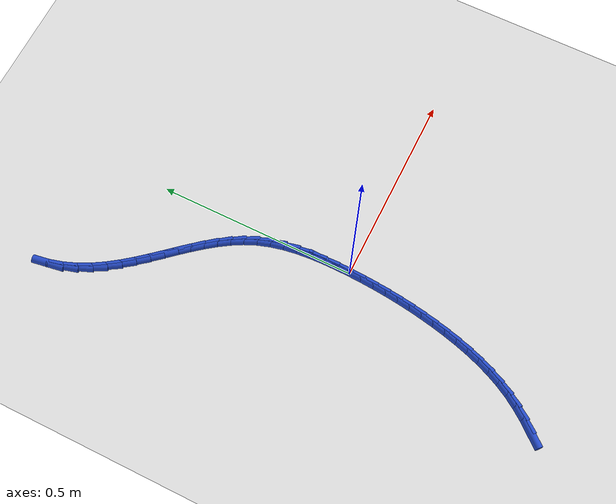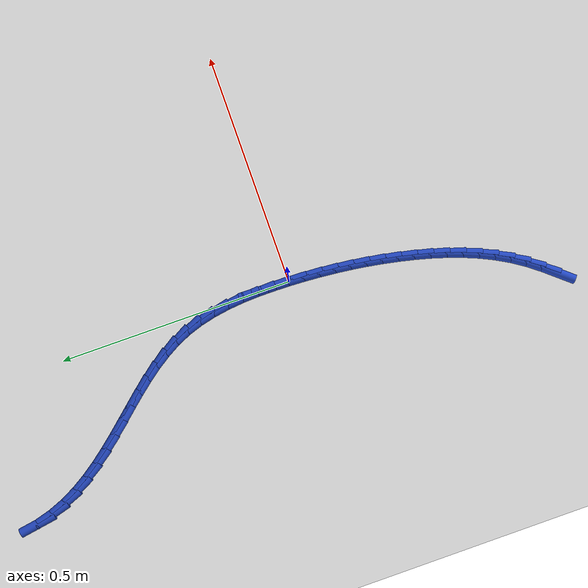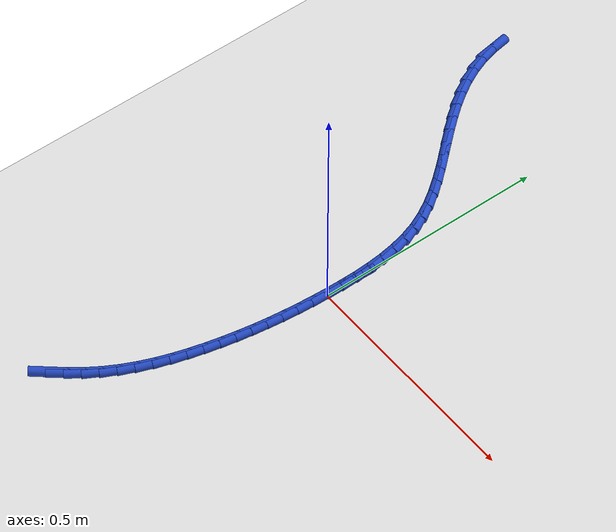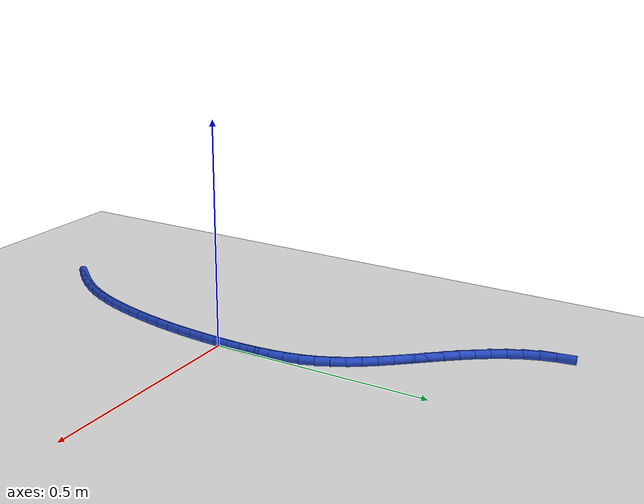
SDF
<sdf version="1.6">
 <world name="default">
  <model name="ground_plane">
   <static>1</static>
   <link name="link">
    <collision name="collision">
     <geometry><plane><normal>0 0 1</normal><size>100 100</size></plane></geometry>
     <surface><friction><ode><mu>100</mu><mu2>50</mu2></ode></friction></surface>
    </collision>
    <visual name="visual">
     <cast_shadows>0</cast_shadows>
     <geometry><plane><normal>0 0 1</normal><size>100 100</size></plane></geometry>
     <material>
      <script><uri>file://media/materials/scripts/gazebo.material</uri><name>Gazebo/WhiteGlow</name></script>
     </material>
    </visual>
   </link>
  </model>
  <model name="line">
   <link name="link_0">
    <pose>-2.3960868011929648e-17 1.3877787807814457e-17 0.01 0 1.57 1.545897107826998</pose>
    <collision name="collision">
     <geometry><cylinder><radius>0.01</radius><length>0.08</length></cylinder></geometry>
    </collision>
    <visual name="visual">
     <material>
      <script><name>Gazebo/Blue</name><uri>file://media/materials/scripts/gazebo.material</uri></script>
     </material>
     <geometry><cylinder><radius>0.01</radius><length>0.08</length></cylinder></geometry>
    </visual>
   </link>
   <link name="link_1">
    <pose>0.0008592763216469214 0.03450303963018791 0.01 0 1.57 -1.5659385153599021</pose>
    <collision name="collision">
     <geometry><cylinder><radius>0.01</radius><length>0.08</length></cylinder></geometry>
    </collision>
    <visual name="visual">
     <material>
      <script><name>Gazebo/Blue</name><uri>file://media/materials/scripts/gazebo.material</uri></script>
     </material>
     <geometry><cylinder><radius>0.01</radius><length>0.08</length></cylinder></geometry>
    </visual>
   </link>
   <link name="link_2">
    <pose>0.0006910396736926901 0.06913495707600271 0.01 0 1.57 -1.5264834480917824</pose>
    <collision name="collision">
     <geometry><cylinder><radius>0.01</radius><length>0.08</length></cylinder></geometry>
    </collision>
    <visual name="visual">
     <material>
      <script><name>Gazebo/Blue</name><uri>file://media/materials/scripts/gazebo.material</uri></script>
     </material>
     <geometry><cylinder><radius>0.01</radius><length>0.08</length></cylinder></geometry>
    </visual>
   </link>
   <link name="link_3">
    <pose>-0.0008382564287101673 0.1036236886790465 0.01 0 1.57 -1.4764610011493455</pose>
    <collision name="collision">
     <geometry><cylinder><radius>0.01</radius><length>0.08</length></cylinder></geometry>
    </collision>
    <visual name="visual">
     <material>
      <script><name>Gazebo/Blue</name><uri>file://media/materials/scripts/gazebo.material</uri></script>
     </material>
     <geometry><cylinder><radius>0.01</radius><length>0.08</length></cylinder></geometry>
    </visual>
   </link>
   <link name="link_4">
    <pose>-0.0040621584704091055 0.13769717078092136 0.01 0 1.57 -1.4147627865338976</pose>
    <collision name="collision">
     <geometry><cylinder><radius>0.01</radius><length>0.08</length></cylinder></geometry>
    </collision>
    <visual name="visual">
     <material>
      <script><name>Gazebo/Blue</name><uri>file://media/materials/scripts/gazebo.material</uri></script>
     </material>
     <geometry><cylinder><radius>0.01</radius><length>0.08</length></cylinder></geometry>
    </visual>
   </link>
   <link name="link_5">
    <pose>-0.009314212936251573 0.1710833397232294 0.01 0 1.57 -1.3401755859879203</pose>
    <collision name="collision">
     <geometry><cylinder><radius>0.01</radius><length>0.08</length></cylinder></geometry>
    </collision>
    <visual name="visual">
     <material>
      <script><name>Gazebo/Blue</name><uri>file://media/materials/scripts/gazebo.material</uri></script>
     </material>
     <geometry><cylinder><radius>0.01</radius><length>0.08</length></cylinder></geometry>
    </visual>
   </link>
   <link name="link_6">
    <pose>-0.016927966311085025 0.2035101318475726 0.01 0 1.57 -1.251628712929015</pose>
    <collision name="collision">
     <geometry><cylinder><radius>0.01</radius><length>0.08</length></cylinder></geometry>
    </collision>
    <visual name="visual">
     <material>
      <script><name>Gazebo/Blue</name><uri>file://media/materials/scripts/gazebo.material</uri></script>
     </material>
     <geometry><cylinder><radius>0.01</radius><length>0.08</length></cylinder></geometry>
    </visual>
   </link>
   <link name="link_7">
    <pose>-0.027236965079756904 0.23470548349555323 0.01 0 1.57 -1.1515240778708402</pose>
    <collision name="collision">
     <geometry><cylinder><radius>0.01</radius><length>0.08</length></cylinder></geometry>
    </collision>
    <visual name="visual">
     <material>
      <script><name>Gazebo/Blue</name><uri>file://media/materials/scripts/gazebo.material</uri></script>
     </material>
     <geometry><cylinder><radius>0.01</radius><length>0.08</length></cylinder></geometry>
    </visual>
   </link>
   <link name="link_8">
    <pose>-0.040494596979720736 0.26445112748032834 0.01 0 1.57 -1.059333888668543</pose>
    <collision name="collision">
     <geometry><cylinder><radius>0.01</radius><length>0.08</length></cylinder></geometry>
    </collision>
    <visual name="visual">
     <material>
      <script><name>Gazebo/Blue</name><uri>file://media/materials/scripts/gazebo.material</uri></script>
     </material>
     <geometry><cylinder><radius>0.01</radius><length>0.08</length></cylinder></geometry>
    </visual>
   </link>
   <link name="link_9">
    <pose>-0.056445630595688676 0.29287014321380417 0.01 0 1.57 -0.9838645484405297</pose>
    <collision name="collision">
     <geometry><cylinder><radius>0.01</radius><length>0.08</length></cylinder></geometry>
    </collision>
    <visual name="visual">
     <material>
      <script><name>Gazebo/Blue</name><uri>file://media/materials/scripts/gazebo.material</uri></script>
     </material>
     <geometry><cylinder><radius>0.01</radius><length>0.08</length></cylinder></geometry>
    </visual>
   </link>
   <link name="link_10">
    <pose>-0.07463597597987633 0.32021906887233503 0.01 0 1.57 -0.9255285605055884</pose>
    <collision name="collision">
     <geometry><cylinder><radius>0.01</radius><length>0.08</length></cylinder></geometry>
    </collision>
    <visual name="visual">
     <material>
      <script><name>Gazebo/Blue</name><uri>file://media/materials/scripts/gazebo.material</uri></script>
     </material>
     <geometry><cylinder><radius>0.01</radius><length>0.08</length></cylinder></geometry>
    </visual>
   </link>
   <link name="link_11">
    <pose>-0.09461108389730388 0.3467547508710066 0.01 0 1.57 -0.8839255645810842</pose>
    <collision name="collision">
     <geometry><cylinder><radius>0.01</radius><length>0.08</length></cylinder></geometry>
    </collision>
    <visual name="visual">
     <material>
      <script><name>Gazebo/Blue</name><uri>file://media/materials/scripts/gazebo.material</uri></script>
     </material>
     <geometry><cylinder><radius>0.01</radius><length>0.08</length></cylinder></geometry>
    </visual>
   </link>
   <link name="link_12">
    <pose>-0.11591640511299148 0.37273403562490415 0.01 0 1.57 -0.858371076571808</pose>
    <collision name="collision">
     <geometry><cylinder><radius>0.01</radius><length>0.08</length></cylinder></geometry>
    </collision>
    <visual name="visual">
     <material>
      <script><name>Gazebo/Blue</name><uri>file://media/materials/scripts/gazebo.material</uri></script>
     </material>
     <geometry><cylinder><radius>0.01</radius><length>0.08</length></cylinder></geometry>
    </visual>
   </link>
   <link name="link_13">
    <pose>-0.13809739039195926 0.398413769549113 0.01 0 1.57 -0.8482296161784035</pose>
    <collision name="collision">
     <geometry><cylinder><radius>0.01</radius><length>0.08</length></cylinder></geometry>
    </collision>
    <visual name="visual">
     <material>
      <script><name>Gazebo/Blue</name><uri>file://media/materials/scripts/gazebo.material</uri></script>
     </material>
     <geometry><cylinder><radius>0.01</radius><length>0.08</length></cylinder></geometry>
    </visual>
   </link>
   <link name="link_14">
    <pose>-0.16069949049922738 0.4240507990587185 0.01 0 1.57 -0.8530871768644122</pose>
    <collision name="collision">
     <geometry><cylinder><radius>0.01</radius><length>0.08</length></cylinder></geometry>
    </collision>
    <visual name="visual">
     <material>
      <script><name>Gazebo/Blue</name><uri>file://media/materials/scripts/gazebo.material</uri></script>
     </material>
     <geometry><cylinder><radius>0.01</radius><length>0.08</length></cylinder></geometry>
    </visual>
   </link>
   <link name="link_15">
    <pose>-0.18326815619981596 0.44990197056880615 0.01 0 1.57 -0.8728035918655589</pose>
    <collision name="collision">
     <geometry><cylinder><radius>0.01</radius><length>0.08</length></cylinder></geometry>
    </collision>
    <visual name="visual">
     <material>
      <script><name>Gazebo/Blue</name><uri>file://media/materials/scripts/gazebo.material</uri></script>
     </material>
     <geometry><cylinder><radius>0.01</radius><length>0.08</length></cylinder></geometry>
    </visual>
   </link>
   <link name="link_16">
    <pose>-0.20534883825874514 0.4762241304944612 0.01 0 1.57 -0.907470738422886</pose>
    <collision name="collision">
     <geometry><cylinder><radius>0.01</radius><length>0.08</length></cylinder></geometry>
    </collision>
    <visual name="visual">
     <material>
      <script><name>Gazebo/Blue</name><uri>file://media/materials/scripts/gazebo.material</uri></script>
     </material>
     <geometry><cylinder><radius>0.01</radius><length>0.08</length></cylinder></geometry>
    </visual>
   </link>
   <link name="link_17">
    <pose>-0.2264869874410351 0.503274125250769 0.01 0 1.57 -0.9572798244319597</pose>
    <collision name="collision">
     <geometry><cylinder><radius>0.01</radius><length>0.08</length></cylinder></geometry>
    </collision>
    <visual name="visual">
     <material>
      <script><name>Gazebo/Blue</name><uri>file://media/materials/scripts/gazebo.material</uri></script>
     </material>
     <geometry><cylinder><radius>0.01</radius><length>0.08</length></cylinder></geometry>
    </visual>
   </link>
   <link name="link_18">
    <pose>-0.24622805451170596 0.5313088012528148 0.01 0 1.57 -1.022286160329267</pose>
    <collision name="collision">
     <geometry><cylinder><radius>0.01</radius><length>0.08</length></cylinder></geometry>
    </collision>
    <visual name="visual">
     <material>
      <script><name>Gazebo/Blue</name><uri>file://media/materials/scripts/gazebo.material</uri></script>
     </material>
     <geometry><cylinder><radius>0.01</radius><length>0.08</length></cylinder></geometry>
    </visual>
   </link>
   <link name="link_19">
    <pose>-0.26411749023577796 0.5605850049156844 0.01 0 1.57 -1.1020674663469452</pose>
    <collision name="collision">
     <geometry><cylinder><radius>0.01</radius><length>0.08</length></cylinder></geometry>
    </collision>
    <visual name="visual">
     <material>
      <script><name>Gazebo/Blue</name><uri>file://media/materials/scripts/gazebo.material</uri></script>
     </material>
     <geometry><cylinder><radius>0.01</radius><length>0.08</length></cylinder></geometry>
    </visual>
   </link>
   <link name="link_20">
    <pose>-0.27970074537827105 0.5913595826544625 0.01 0 1.57 -1.1953191149022981</pose>
    <collision name="collision">
     <geometry><cylinder><radius>0.01</radius><length>0.08</length></cylinder></geometry>
    </collision>
    <visual name="visual">
     <material>
      <script><name>Gazebo/Blue</name><uri>file://media/materials/scripts/gazebo.material</uri></script>
     </material>
     <geometry><cylinder><radius>0.01</radius><length>0.08</length></cylinder></geometry>
    </visual>
   </link>
   <link name="link_21">
    <pose>-0.2925232707042056 0.6238893808842352 0.01 0 1.57 -1.2995193620674919</pose>
    <collision name="collision">
     <geometry><cylinder><radius>0.01</radius><length>0.08</length></cylinder></geometry>
    </collision>
    <visual name="visual">
     <material>
      <script><name>Gazebo/Blue</name><uri>file://media/materials/scripts/gazebo.material</uri></script>
     </material>
     <geometry><cylinder><radius>0.01</radius><length>0.08</length></cylinder></geometry>
    </visual>
   </link>
   <link name="link_22">
    <pose>-0.30213051697860155 0.6584312460200873 0.01 0 1.57 -1.4100146691483508</pose>
    <collision name="collision">
     <geometry><cylinder><radius>0.01</radius><length>0.08</length></cylinder></geometry>
    </collision>
    <visual name="visual">
     <material>
      <script><name>Gazebo/Blue</name><uri>file://media/materials/scripts/gazebo.material</uri></script>
     </material>
     <geometry><cylinder><radius>0.01</radius><length>0.08</length></cylinder></geometry>
    </visual>
   </link>
   <link name="link_243">
    <pose>-0.16952066410356023 -0.5360640405710496 0.01 0 1.57 0.8675143010172975</pose>
    <collision name="collision">
     <geometry><cylinder><radius>0.01</radius><length>0.08</length></cylinder></geometry>
    </collision>
    <visual name="visual">
     <material>
      <script><name>Gazebo/Blue</name><uri>file://media/materials/scripts/gazebo.material</uri></script>
     </material>
     <geometry><cylinder><radius>0.01</radius><length>0.08</length></cylinder></geometry>
    </visual>
   </link>
   <link name="link_244">
    <pose>-0.14784404164027748 -0.5104994055409805 0.01 0 1.57 0.919317388012389</pose>
    <collision name="collision">
     <geometry><cylinder><radius>0.01</radius><length>0.08</length></cylinder></geometry>
    </collision>
    <visual name="visual">
     <material>
      <script><name>Gazebo/Blue</name><uri>file://media/materials/scripts/gazebo.material</uri></script>
     </material>
     <geometry><cylinder><radius>0.01</radius><length>0.08</length></cylinder></geometry>
    </visual>
   </link>
   <link name="link_245">
    <pose>-0.12759736056947113 -0.48394779706933616 0.01 0 1.57 0.9854854966625871</pose>
    <collision name="collision">
     <geometry><cylinder><radius>0.01</radius><length>0.08</length></cylinder></geometry>
    </collision>
    <visual name="visual">
     <material>
      <script><name>Gazebo/Blue</name><uri>file://media/materials/scripts/gazebo.material</uri></script>
     </material>
     <geometry><cylinder><radius>0.01</radius><length>0.08</length></cylinder></geometry>
    </visual>
   </link>
   <link name="link_246">
    <pose>-0.1091593927406334 -0.4561288908148453 0.01 0 1.57 1.057941768221086</pose>
    <collision name="collision">
     <geometry><cylinder><radius>0.01</radius><length>0.08</length></cylinder></geometry>
    </collision>
    <visual name="visual">
     <material>
      <script><name>Gazebo/Blue</name><uri>file://media/materials/scripts/gazebo.material</uri></script>
     </material>
     <geometry><cylinder><radius>0.01</radius><length>0.08</length></cylinder></geometry>
    </visual>
   </link>
   <link name="link_247">
    <pose>-0.09272062796904863 -0.42693620347424255 0.01 0 1.57 1.1237514294509514</pose>
    <collision name="collision">
     <geometry><cylinder><radius>0.01</radius><length>0.08</length></cylinder></geometry>
    </collision>
    <visual name="visual">
     <material>
      <script><name>Gazebo/Blue</name><uri>file://media/materials/scripts/gazebo.material</uri></script>
     </material>
     <geometry><cylinder><radius>0.01</radius><length>0.08</length></cylinder></geometry>
    </visual>
   </link>
   <link name="link_248">
    <pose>-0.07815545642370804 -0.39655510694360496 0.01 0 1.57 1.1819344743977227</pose>
    <collision name="collision">
     <geometry><cylinder><radius>0.01</radius><length>0.08</length></cylinder></geometry>
    </collision>
    <visual name="visual">
     <material>
      <script><name>Gazebo/Blue</name><uri>file://media/materials/scripts/gazebo.material</uri></script>
     </material>
     <geometry><cylinder><radius>0.01</radius><length>0.08</length></cylinder></geometry>
    </visual>
   </link>
   <link name="link_249">
    <pose>-0.06530802912099831 -0.36519889296648417 0.01 0 1.57 1.2328955408152869</pose>
    <collision name="collision">
     <geometry><cylinder><radius>0.01</radius><length>0.08</length></cylinder></geometry>
    </collision>
    <visual name="visual">
     <material>
      <script><name>Gazebo/Blue</name><uri>file://media/materials/scripts/gazebo.material</uri></script>
     </material>
     <geometry><cylinder><radius>0.01</radius><length>0.08</length></cylinder></geometry>
    </visual>
   </link>
   <link name="link_250">
    <pose>-0.05402249707730616 -0.3330808532864317 0.01 0 1.57 1.2771079126541651</pose>
    <collision name="collision">
     <geometry><cylinder><radius>0.01</radius><length>0.08</length></cylinder></geometry>
    </collision>
    <visual name="visual">
     <material>
      <script><name>Gazebo/Blue</name><uri>file://media/materials/scripts/gazebo.material</uri></script>
     </material>
     <geometry><cylinder><radius>0.01</radius><length>0.08</length></cylinder></geometry>
    </visual>
   </link>
   <link name="link_251">
    <pose>-0.0441430113090183 -0.30041427964699924 0.01 0 1.57 1.3150432284868707</pose>
    <collision name="collision">
     <geometry><cylinder><radius>0.01</radius><length>0.08</length></cylinder></geometry>
    </collision>
    <visual name="visual">
     <material>
      <script><name>Gazebo/Blue</name><uri>file://media/materials/scripts/gazebo.material</uri></script>
     </material>
     <geometry><cylinder><radius>0.01</radius><length>0.08</length></cylinder></geometry>
    </visual>
   </link>
   <link name="link_252">
    <pose>-0.03551372283252123 -0.2674124637917372 0.01 0 1.57 1.3471272339561418</pose>
    <collision name="collision">
     <geometry><cylinder><radius>0.01</radius><length>0.08</length></cylinder></geometry>
    </collision>
    <visual name="visual">
     <material>
      <script><name>Gazebo/Blue</name><uri>file://media/materials/scripts/gazebo.material</uri></script>
     </material>
     <geometry><cylinder><radius>0.01</radius><length>0.08</length></cylinder></geometry>
    </visual>
   </link>
   <link name="link_253">
    <pose>-0.02797885163606248 -0.2342885356849817 0.01 0 1.57 1.3749761914387304</pose>
    <collision name="collision">
     <geometry><cylinder><radius>0.01</radius><length>0.08</length></cylinder></geometry>
    </collision>
    <visual name="visual">
     <material>
      <script><name>Gazebo/Blue</name><uri>file://media/materials/scripts/gazebo.material</uri></script>
     </material>
     <geometry><cylinder><radius>0.01</radius><length>0.08</length></cylinder></geometry>
    </visual>
   </link>
   <link name="link_254">
    <pose>-0.021412480597727095 -0.20118557940657172 0.01 0 1.57 1.4018973880012553</pose>
    <collision name="collision">
     <geometry><cylinder><radius>0.01</radius><length>0.08</length></cylinder></geometry>
    </collision>
    <visual name="visual">
     <material>
      <script><name>Gazebo/Blue</name><uri>file://media/materials/scripts/gazebo.material</uri></script>
     </material>
     <geometry><cylinder><radius>0.01</radius><length>0.08</length></cylinder></geometry>
    </visual>
   </link>
   <link name="link_255">
    <pose>-0.01576507271134041 -0.16806752314106507 0.01 0 1.57 1.4282071055669203</pose>
    <collision name="collision">
     <geometry><cylinder><radius>0.01</radius><length>0.08</length></cylinder></geometry>
    </collision>
    <visual name="visual">
     <material>
      <script><name>Gazebo/Blue</name><uri>file://media/materials/scripts/gazebo.material</uri></script>
     </material>
     <geometry><cylinder><radius>0.01</radius><length>0.08</length></cylinder></geometry>
    </visual>
   </link>
   <link name="link_256">
    <pose>-0.010999128532369923 -0.13487005997397364 0.01 0 1.57 1.453702714019765</pose>
    <collision name="collision">
     <geometry><cylinder><radius>0.01</radius><length>0.08</length></cylinder></geometry>
    </collision>
    <visual name="visual">
     <material>
      <script><name>Gazebo/Blue</name><uri>file://media/materials/scripts/gazebo.material</uri></script>
     </material>
     <geometry><cylinder><radius>0.01</radius><length>0.08</length></cylinder></geometry>
    </visual>
   </link>
   <link name="link_257">
    <pose>-0.0070771486162831375 -0.10152888299080945 0.01 0 1.57 1.4781978275067156</pose>
    <collision name="collision">
     <geometry><cylinder><radius>0.01</radius><length>0.08</length></cylinder></geometry>
    </collision>
    <visual name="visual">
     <material>
      <script><name>Gazebo/Blue</name><uri>file://media/materials/scripts/gazebo.material</uri></script>
     </material>
     <geometry><cylinder><radius>0.01</radius><length>0.08</length></cylinder></geometry>
    </visual>
   </link>
   <link name="link_258">
    <pose>-0.003961633518547557 -0.06797968527708448 0.01 0 1.57 1.501526966772524</pose>
    <collision name="collision">
     <geometry><cylinder><radius>0.01</radius><length>0.08</length></cylinder></geometry>
    </collision>
    <visual name="visual">
     <material>
      <script><name>Gazebo/Blue</name><uri>file://media/materials/scripts/gazebo.material</uri></script>
     </material>
     <geometry><cylinder><radius>0.01</radius><length>0.08</length></cylinder></geometry>
    </visual>
   </link>
   <link name="link_259">
    <pose>-0.001615083794630688 -0.03415815991831071 0.01 0 1.57 1.5235489975973249</pose>
    <collision name="collision">
     <geometry><cylinder><radius>0.01</radius><length>0.08</length></cylinder></geometry>
    </collision>
    <visual name="visual">
     <material>
      <script><name>Gazebo/Blue</name><uri>file://media/materials/scripts/gazebo.material</uri></script>
     </material>
     <geometry><cylinder><radius>0.01</radius><length>0.08</length></cylinder></geometry>
    </visual>
   </link>
   <link name="link_260">
    <pose>-3.198396408832238e-17 -1.1796119636642288e-16 0.01 0 1.57 1.5441492426957402</pose>
    <collision name="collision">
     <geometry><cylinder><radius>0.01</radius><length>0.08</length></cylinder></geometry>
    </collision>
    <visual name="visual">
     <material>
      <script><name>Gazebo/Blue</name><uri>file://media/materials/scripts/gazebo.material</uri></script>
     </material>
     <geometry><cylinder><radius>0.01</radius><length>0.08</length></cylinder></geometry>
    </visual>
   </link>
   <link name="link_261">
    <pose>0.0009211173098769038 0.034559101392335284 0.01 0 1.57 1.5632402912175412</pose>
    <collision name="collision">
     <geometry><cylinder><radius>0.01</radius><length>0.08</length></cylinder></geometry>
    </collision>
    <visual name="visual">
     <material>
      <script><name>Gazebo/Blue</name><uri>file://media/materials/scripts/gazebo.material</uri></script>
     </material>
     <geometry><cylinder><radius>0.01</radius><length>0.08</length></cylinder></geometry>
    </visual>
   </link>
   <link name="link_262">
    <pose>0.0011857675795326169 0.06958345117318354 0.01 0 1.57 1.5537570336911604</pose>
    <collision name="collision">
     <geometry><cylinder><radius>0.01</radius><length>0.08</length></cylinder></geometry>
    </collision>
    <visual name="visual">
     <material>
      <script><name>Gazebo/Blue</name><uri>file://media/materials/scripts/gazebo.material</uri></script>
     </material>
     <geometry><cylinder><radius>0.01</radius><length>0.08</length></cylinder></geometry>
    </visual>
   </link>
  </model>
 </world>
</sdf>
